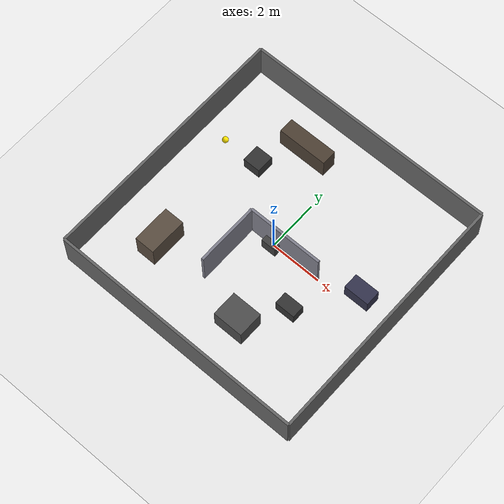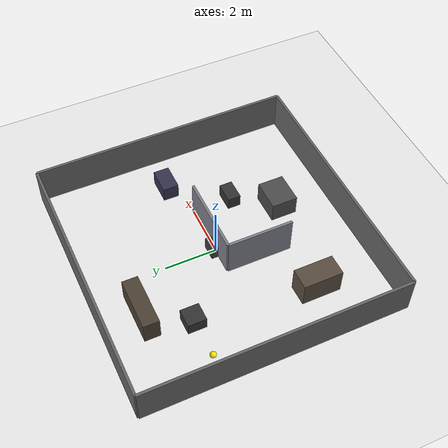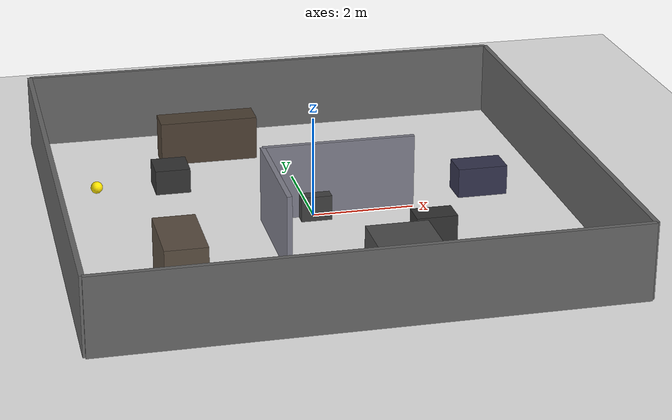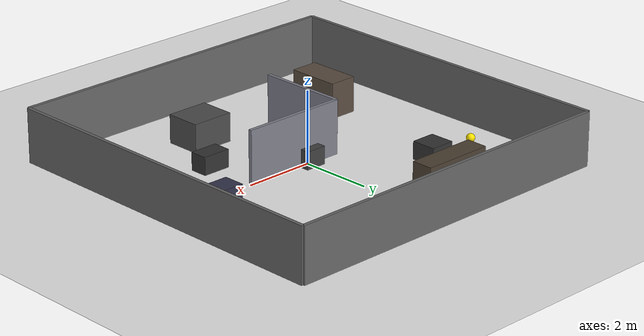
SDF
<?xml version="1.0"?>
<sdf version="1.6">
  <world name="h2track_lab">
    <gravity>0 0 -9.8</gravity>
    <physics type="ode">
      <max_step_size>0.001</max_step_size>
      <real_time_update_rate>1000</real_time_update_rate>
    </physics>
    <scene>
      <ambient>0.4 0.4 0.4 1.0</ambient>
      <background>0.9 0.9 0.95 1.0</background>
      <shadows>true</shadows>
    </scene>
    <light name="sun" type="directional">
      <pose>0 0 10 0 0 0</pose>
      <diffuse>0.8 0.8 0.8 1</diffuse>
      <specular>0.2 0.2 0.2 1</specular>
      <direction>-0.5 0.5 -1</direction>
    </light>

    <model name="ground_plane">
      <static>true</static>
      <link name="link">
        <collision name="collision">
          <geometry>
            <plane>
              <normal>0 0 1</normal>
            </plane>
          </geometry>
        </collision>
        <visual name="visual">
          <geometry>
            <plane>
              <normal>0 0 1</normal>
              <size>12 12</size>
            </plane>
          </geometry>
          <material>
            <ambient>0.92 0.92 0.92 1</ambient>
            <diffuse>0.92 0.92 0.92 1</diffuse>
          </material>
        </visual>
      </link>
    </model>

    <model name="wall_north">
      <static>true</static>
      <pose>0 5.0 0.75 0 0 0</pose>
      <link name="link">
        <collision name="collision">
          <geometry><box><size>10 0.1 1.5</size></box></geometry>
        </collision>
        <visual name="visual">
          <geometry><box><size>10 0.1 1.5</size></box></geometry>
          <material><ambient>0.4 0.4 0.4 1</ambient><diffuse>0.4 0.4 0.4 1</diffuse></material>
        </visual>
      </link>
    </model>
    <model name="wall_south">
      <static>true</static>
      <pose>0 -5.0 0.75 0 0 0</pose>
      <link name="link">
        <collision name="collision">
          <geometry><box><size>10 0.1 1.5</size></box></geometry>
        </collision>
        <visual name="visual">
          <geometry><box><size>10 0.1 1.5</size></box></geometry>
          <material><ambient>0.4 0.4 0.4 1</ambient><diffuse>0.4 0.4 0.4 1</diffuse></material>
        </visual>
      </link>
    </model>
    <model name="wall_west">
      <static>true</static>
      <pose>-5.0 0 0.75 0 0 1.5708</pose>
      <link name="link">
        <collision name="collision">
          <geometry><box><size>10 0.1 1.5</size></box></geometry>
        </collision>
        <visual name="visual">
          <geometry><box><size>10 0.1 1.5</size></box></geometry>
          <material><ambient>0.4 0.4 0.4 1</ambient><diffuse>0.4 0.4 0.4 1</diffuse></material>
        </visual>
      </link>
    </model>
    <model name="wall_east">
      <static>true</static>
      <pose>5.0 0 0.75 0 0 1.5708</pose>
      <link name="link">
        <collision name="collision">
          <geometry><box><size>10 0.1 1.5</size></box></geometry>
        </collision>
        <visual name="visual">
          <geometry><box><size>10 0.1 1.5</size></box></geometry>
          <material><ambient>0.4 0.4 0.4 1</ambient><diffuse>0.4 0.4 0.4 1</diffuse></material>
        </visual>
      </link>
    </model>

    <model name="obstacle_1">
      <static>true</static>
      <pose>-2.5 2.0 0.25 0 0 0</pose>
      <link name="link">
        <collision name="collision"><geometry><box><size>0.7 0.7 0.5</size></box></geometry></collision>
        <visual name="visual"><geometry><box><size>0.7 0.7 0.5</size></box></geometry><material><ambient>0.2 0.2 0.2 1</ambient><diffuse>0.2 0.2 0.2 1</diffuse></material></visual>
      </link>
    </model>
    <model name="obstacle_2">
      <static>true</static>
      <pose>2.0 -1.5 0.25 0 0 0</pose>
      <link name="link">
        <collision name="collision"><geometry><box><size>0.8 0.5 0.5</size></box></geometry></collision>
        <visual name="visual"><geometry><box><size>0.8 0.5 0.5</size></box></geometry><material><ambient>0.2 0.2 0.2 1</ambient><diffuse>0.2 0.2 0.2 1</diffuse></material></visual>
      </link>
    </model>
    <model name="obstacle_3">
      <static>true</static>
      <pose>0.0 0.0 0.25 0 0 0</pose>
      <link name="link">
        <collision name="collision"><geometry><box><size>0.6 0.6 0.5</size></box></geometry></collision>
        <visual name="visual"><geometry><box><size>0.6 0.6 0.5</size></box></geometry><material><ambient>0.25 0.25 0.25 1</ambient><diffuse>0.25 0.25 0.25 1</diffuse></material></visual>
      </link>
    </model>

    <model name="inner_wall_h">
      <static>true</static>
      <pose>0.5 0 0.75 0 0 0</pose>
      <link name="link">
        <collision name="collision">
          <geometry><box><size>3.0 0.1 1.5</size></box></geometry>
        </collision>
        <visual name="visual">
          <geometry><box><size>3.0 0.1 1.5</size></box></geometry>
          <material><ambient>0.5 0.5 0.55 1</ambient><diffuse>0.5 0.5 0.55 1</diffuse></material>
        </visual>
      </link>
    </model>
    <model name="inner_wall_v">
      <static>true</static>
      <pose>-1.0 -1.25 0.75 0 0 1.5708</pose>
      <link name="link">
        <collision name="collision">
          <geometry><box><size>2.5 0.1 1.5</size></box></geometry>
        </collision>
        <visual name="visual">
          <geometry><box><size>2.5 0.1 1.5</size></box></geometry>
          <material><ambient>0.5 0.5 0.55 1</ambient><diffuse>0.5 0.5 0.55 1</diffuse></material>
        </visual>
      </link>
    </model>

    <model name="obstacle_4">
      <static>true</static>
      <pose>1.0 -3.0 0.4 0 0 0</pose>
      <link name="link">
        <collision name="collision"><geometry><box><size>1.2 1.0 0.8</size></box></geometry></collision>
        <visual name="visual"><geometry><box><size>1.2 1.0 0.8</size></box></geometry><material><ambient>0.3 0.3 0.3 1</ambient><diffuse>0.3 0.3 0.3 1</diffuse></material></visual>
      </link>
    </model>
    <model name="obstacle_5">
      <static>true</static>
      <pose>-3.0 -2.5 0.5 0 0 0</pose>
      <link name="link">
        <collision name="collision"><geometry><box><size>0.8 1.5 1.0</size></box></geometry></collision>
        <visual name="visual"><geometry><box><size>0.8 1.5 1.0</size></box></geometry><material><ambient>0.35 0.3 0.25 1</ambient><diffuse>0.35 0.3 0.25 1</diffuse></material></visual>
      </link>
    </model>
    <model name="obstacle_6">
      <static>true</static>
      <pose>3.5 0.5 0.3 0 0 0</pose>
      <link name="link">
        <collision name="collision"><geometry><box><size>1.0 0.6 0.6</size></box></geometry></collision>
        <visual name="visual"><geometry><box><size>1.0 0.6 0.6</size></box></geometry><material><ambient>0.2 0.2 0.3 1</ambient><diffuse>0.2 0.2 0.3 1</diffuse></material></visual>
      </link>
    </model>
    <model name="obstacle_7">
      <static>true</static>
      <pose>-1.5 3.5 0.45 0 0 0</pose>
      <link name="link">
        <collision name="collision"><geometry><box><size>2.0 0.6 0.9</size></box></geometry></collision>
        <visual name="visual"><geometry><box><size>2.0 0.6 0.9</size></box></geometry><material><ambient>0.3 0.25 0.2 1</ambient><diffuse>0.3 0.25 0.2 1</diffuse></material></visual>
      </link>
    </model>

    <model name="hydrogen_source">
      <static>true</static>
      <pose>-4.0 1.95 0.15 0 0 0</pose>
      <link name="link">
        <collision name="collision">
          <geometry><sphere><radius>0.12</radius></sphere></geometry>
        </collision>
        <visual name="visual">
          <geometry><sphere><radius>0.12</radius></sphere></geometry>
          <material>
            <ambient>1.0 0.9 0.0 1</ambient>
            <diffuse>1.0 0.9 0.0 1</diffuse>
            <emissive>0.9 0.8 0.0 1</emissive>
          </material>
        </visual>
      </link>
    </model>
  </world>
</sdf>
